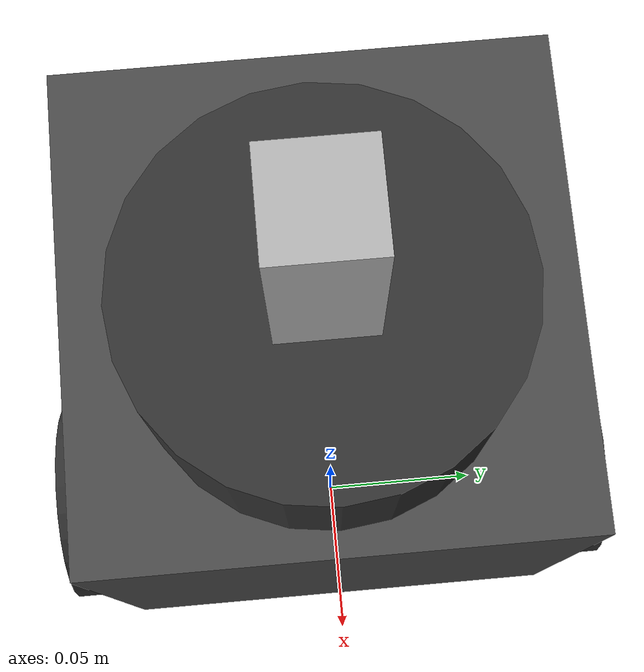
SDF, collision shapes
<?xml version="1.0" ?>
<sdf version="1.5">
  <model name="turtlebot3_burger">
    <pose>0.0 0.0 0.0 0.0 0.0 0.0</pose>

    <link name="base_footprint"/>

    <link name="base_link">

      <inertial>
        <pose>-0.032 0 0.070 0 0 0</pose>
        <inertia>
          <ixx>7.2397393e-01</ixx>
          <ixy>4.686399e-10</ixy>
          <ixz>-1.09525703e-08</ixz>
          <iyy>7.2397393e-01</iyy>
          <iyz>2.8582649e-09</iyz>
          <izz>6.53050163e-01</izz>
        </inertia>
        <mass>8.2573504e-01</mass>
      </inertial>

      <collision name="base_collision">
        <pose>-0.032 0 0.070 0 0 0</pose>
        <geometry>
          <box>
            <size>0.140 0.140 0.140</size>
          </box>
        </geometry>
      </collision>

      <visual name="base_visual">
        <pose>-0.032 0 0 0 0 0</pose>
        <geometry>
          <mesh>
            <uri>model://turtlebot3_common/meshes/bases/burger_base.stl</uri>
            <scale>0.001 0.001 0.001</scale>
          </mesh>
        </geometry>
        <material>
          <ambient>0.3 0.3 0.3 1.0</ambient>
          <diffuse>0.3 0.3 0.3 1.0</diffuse>
        </material>
      </visual>
    </link>

    <link name="imu_link">
      <sensor name="tb3_imu" type="imu">
        <always_on>true</always_on>
        <update_rate>200</update_rate>
        <imu>
          <angular_velocity>
            <x>
              <noise type="gaussian">
                <mean>0.0</mean>
                <stddev>2e-4</stddev>
              </noise>
            </x>
            <y>
              <noise type="gaussian">
                <mean>0.0</mean>
                <stddev>2e-4</stddev>
              </noise>
            </y>
            <z>
              <noise type="gaussian">
                <mean>0.0</mean>
                <stddev>2e-4</stddev>
              </noise>
            </z>
          </angular_velocity>
          <linear_acceleration>
            <x>
              <noise type="gaussian">
                <mean>0.0</mean>
                <stddev>1.7e-2</stddev>
              </noise>
            </x>
            <y>
              <noise type="gaussian">
                <mean>0.0</mean>
                <stddev>1.7e-2</stddev>
              </noise>
            </y>
            <z>
              <noise type="gaussian">
                <mean>0.0</mean>
                <stddev>1.7e-2</stddev>
              </noise>
            </z>
          </linear_acceleration>
        </imu>
        <plugin name="turtlebot3_imu" filename="libgazebo_ros_imu_sensor.so">
          <ros>
            <remapping>~/out:=imu</remapping>
          </ros>
        </plugin>
      </sensor>
    </link>

    <link name="base_scan">
      <inertial>
        <pose>-0.020 0 0.161 0 0 0</pose>
        <inertia>
          <ixx>0.001</ixx>
          <ixy>0.000</ixy>
          <ixz>0.000</ixz>
          <iyy>0.001</iyy>
          <iyz>0.000</iyz>
          <izz>0.001</izz>
        </inertia>
        <mass>0.114</mass>
      </inertial>

      <collision name="lidar_sensor_collision">
        <pose>-0.020 0 0.161 0 0 0</pose>
        <geometry>
          <cylinder>
            <radius>0.0508</radius>
            <length>0.055</length>
          </cylinder>
        </geometry>
      </collision>

      <visual name="lidar_sensor_visual">
        <pose>-0.032 0 0.171 0 0 0</pose>
        <geometry>
          <mesh>
            <uri>model://turtlebot3_common/meshes/sensors/lds.stl</uri>
            <scale>0.001 0.001 0.001</scale>
          </mesh>
        </geometry>
        <material>
          <ambient>0.2 0.2 0.2 1.0</ambient>
          <diffuse>0.2 0.2 0.2 1.0</diffuse>
        </material>
      </visual>

      <sensor name="hls_lfcd_lds" type="ray">
        <always_on>true</always_on>
        <visualize>true</visualize>
        <pose>-0.032 0 0.171 0 0 0</pose>
        <update_rate>5</update_rate>
        <ray>
          <scan>
            <horizontal>
              <samples>360</samples>
              <resolution>1.000000</resolution>
              <min_angle>0.000000</min_angle>
              <max_angle>6.280000</max_angle>
            </horizontal>
          </scan>
          <range>
            <min>0.120000</min>
            <max>3.5</max>
            <resolution>0.015000</resolution>
          </range>
          <noise>
            <type>gaussian</type>
            <mean>0.0</mean>
            <stddev>0.01</stddev>
          </noise>
        </ray>
        <plugin name="turtlebot3_laserscan" filename="libgazebo_ros_ray_sensor.so">
          <ros>
            <remapping>~/out:=scan</remapping>
          </ros>
          <output_type>sensor_msgs/LaserScan</output_type>
          <frame_name>base_scan</frame_name>
        </plugin>
      </sensor>
    </link>

    <link name="wheel_left_link">

      <inertial>
        <pose>0 0.08 0.023 -1.57 0 0</pose>
        <inertia>
          <ixx>1.8158194e-03</ixx>
          <ixy>-9.3392e-12</ixy>
          <ixz>1.04909e-11</ixz>
          <iyy>3.2922126e-03</iyy>
          <iyz>5.75694e-11</iyz>
          <izz>1.8158194e-03</izz>
        </inertia>
        <mass>2.8498940e-02</mass>
      </inertial>

      <collision name="wheel_left_collision">
        <pose>0 0.08 0.023 -1.57 0 0</pose>
        <geometry>
          <cylinder>
            <radius>0.033</radius>
            <length>0.018</length>
          </cylinder>
        </geometry>
        <surface>
          <!-- This friction pamareter don't contain reliable data!! -->
          <friction>
            <ode>
              <mu>100000.0</mu>
              <mu2>100000.0</mu2>
              <fdir1>0 0 0</fdir1>
              <slip1>0.0</slip1>
              <slip2>0.0</slip2>
            </ode>
          </friction>
          <contact>
            <ode>
              <soft_cfm>0</soft_cfm>
              <soft_erp>0.2</soft_erp>
              <kp>1e+5</kp>
              <kd>1</kd>
              <max_vel>0.01</max_vel>
              <min_depth>0.001</min_depth>
            </ode>
          </contact>
        </surface>
      </collision>

      <visual name="wheel_left_visual">
        <pose>0 0.08 0.023 0 0 0</pose>
        <geometry>
          <mesh>
            <uri>model://turtlebot3_common/meshes/wheels/left_tire.stl</uri>
            <scale>0.001 0.001 0.001</scale>
          </mesh>
        </geometry>
        <material>
          <ambient>0.2 0.2 0.2 1.0</ambient>
          <diffuse>0.2 0.2 0.2 1.0</diffuse>
        </material>
      </visual>
    </link>

    <link name="wheel_right_link">

      <inertial>
        <pose>0.0 -0.08 0.023 -1.57 0 0</pose>
        <inertia>
          <ixx>1.8158194e-03</ixx>
          <ixy>-9.3392e-12</ixy>
          <ixz>1.04909e-11</ixz>
          <iyy>3.2922126e-03</iyy>
          <iyz>5.75694e-11</iyz>
          <izz>1.8158194e-03</izz>
        </inertia>
        <mass>2.8498940e-02</mass>
      </inertial>

      <collision name="wheel_right_collision">
        <pose>0.0 -0.08 0.023 -1.57 0 0</pose>
        <geometry>
          <cylinder>
            <radius>0.033</radius>
            <length>0.018</length>
          </cylinder>
        </geometry>
        <surface>
          <!-- This friction pamareter don't contain reliable data!! -->
          <friction>
            <ode>
              <mu>100000.0</mu>
              <mu2>100000.0</mu2>
              <fdir1>0 0 0</fdir1>
              <slip1>0.0</slip1>
              <slip2>0.0</slip2>
            </ode>
          </friction>
          <contact>
            <ode>
              <soft_cfm>0</soft_cfm>
              <soft_erp>0.2</soft_erp>
              <kp>1e+5</kp>
              <kd>1</kd>
              <max_vel>0.01</max_vel>
              <min_depth>0.001</min_depth>
            </ode>
          </contact>
        </surface>
      </collision>

      <visual name="wheel_right_visual">
        <pose>0.0 -0.08 0.023 0 0 0</pose>
        <geometry>
          <mesh>
            <uri>model://turtlebot3_common/meshes/wheels/right_tire.stl</uri>
            <scale>0.001 0.001 0.001</scale>
          </mesh>
        </geometry>
        <material>
          <ambient>0.2 0.2 0.2 1.0</ambient>
          <diffuse>0.2 0.2 0.2 1.0</diffuse>
        </material>
      </visual>
    </link>

    <link name='caster_back_link'>
      <pose>-0.081 0 -0.004 -1.57 0 0</pose>
      <inertial>
        <mass>0.005</mass>
        <inertia>
          <ixx>0.001</ixx>
          <ixy>0.000</ixy>
          <ixz>0.000</ixz>
          <iyy>0.001</iyy>
          <iyz>0.000</iyz>
          <izz>0.001</izz>
        </inertia>
      </inertial>
      <collision name='collision'>
        <geometry>
          <sphere>
            <radius>0.005000</radius>
          </sphere>
        </geometry>
        <surface>
          <contact>
            <ode>
              <soft_cfm>0</soft_cfm>
              <soft_erp>0.2</soft_erp>
              <kp>1e+5</kp>
              <kd>1</kd>
              <max_vel>0.01</max_vel>
              <min_depth>0.001</min_depth>
            </ode>
          </contact>
        </surface>
      </collision>
    </link>

    <joint name="base_joint" type="fixed">
      <parent>base_footprint</parent>
      <child>base_link</child>
      <pose>0.0 0.0 0.010 0 0 0</pose>
    </joint>

    <joint name="wheel_left_joint" type="revolute">
      <parent>base_link</parent>
      <child>wheel_left_link</child>
      <pose>0.0 0.08 0.023 -1.57 0 0</pose>
      <axis>
        <xyz>0 0 1</xyz>
      </axis>
    </joint>

    <joint name="wheel_right_joint" type="revolute">
      <parent>base_link</parent>
      <child>wheel_right_link</child>
      <pose>0.0 -0.08 0.023 -1.57 0 0</pose>
      <axis>
        <xyz>0 0 1</xyz>
      </axis>
    </joint>

    <joint name='caster_back_joint' type='ball'>
      <parent>base_link</parent>
      <child>caster_back_link</child>
    </joint>

    <joint name="imu_joint" type="fixed">
      <parent>base_link</parent>
      <child>imu_link</child>
      <pose>-0.032 0 0.068 0 0 0</pose>
      <axis>
        <xyz>0 0 1</xyz>
      </axis>
    </joint>

    <joint name="lidar_joint" type="fixed">
      <parent>base_link</parent>
      <child>base_scan</child>
      <pose>-0.032 0 0.171 0 0 0</pose>
      <axis>
        <xyz>0 0 1</xyz>
      </axis>
    </joint>

    <plugin name="turtlebot3_diff_drive" filename="libgazebo_ros_diff_drive.so">

      <ros>
      </ros>

      <update_rate>30</update_rate>

      <!-- wheels -->
      <left_joint>wheel_left_joint</left_joint>
      <right_joint>wheel_right_joint</right_joint>

      <!-- kinematics -->
      <wheel_separation>0.160</wheel_separation>
      <wheel_diameter>0.066</wheel_diameter>

      <!-- limits -->
      <max_wheel_torque>20</max_wheel_torque>
      <max_wheel_acceleration>1.0</max_wheel_acceleration>

      <command_topic>cmd_vel</command_topic>

      <!-- output -->
      <publish_odom>true</publish_odom>
      <publish_odom_tf>true</publish_odom_tf>
      <publish_wheel_tf>false</publish_wheel_tf>

      <odometry_topic>odom</odometry_topic>
      <odometry_frame>odom</odometry_frame>
      <robot_base_frame>base_footprint</robot_base_frame>

    </plugin>

    <plugin name="turtlebot3_joint_state" filename="libgazebo_ros_joint_state_publisher.so">
      <ros>
        <remapping>~/out:=joint_states</remapping>
      </ros>
      <update_rate>30</update_rate>
      <joint_name>wheel_left_joint</joint_name>
      <joint_name>wheel_right_joint</joint_name>
    </plugin>

    <!-- Realsense D435 -->

    <link name="realsense_link">
      <pose>-0.02 0 0.201 0 0 0</pose>
      <visual name="realsense_link_visual">
        <pose>0 0 0 1.57 0 1.57</pose>
        <geometry>
          <mesh>
            <uri>package://realsense2_description/meshes/d435.dae</uri>
            <scale>0.5 0.5 0.5</scale>
          </mesh>
        </geometry>
      </visual>
      <collision name="realsense_link_collision">
        <pose>0 0 0 1.57 0 1.57</pose>
        <geometry>
          <box>
            <size>0.02505 0.090 0.025</size>
          </box>
        </geometry>
      </collision>
      <inertial>
        <pose>0 0 0 0 0 0</pose>
        <inertia>
          <ixx>0.001</ixx>
          <ixy>0.000</ixy>
          <ixz>0.000</ixz>
          <iyy>0.001</iyy>
          <iyz>0.000</iyz>
          <izz>0.001</izz>
        </inertia>
        <mass>0.000001</mass>
      </inertial>

      <sensor name="cameradepth" type="depth">
        <camera name="camera">
          <horizontal_fov>1.57</horizontal_fov>
          <image>
            <width>1280</width>
            <height>720</height>
          </image>
          <clip>
            <near>0.1</near>
            <far>100</far>
          </clip>
          <noise>
            <type>gaussian</type>
            <mean>0.0</mean>
            <stddev>0.100</stddev>
          </noise>
        </camera>
        <always_on>1</always_on>
        <update_rate>30</update_rate>
        <visualize>0</visualize>
      </sensor>
      <sensor name="cameracolor" type="camera">
        <camera name="camera">
          <horizontal_fov>1.57</horizontal_fov>
          <image>
            <width>1280</width>
            <height>720</height>
            <format>RGB_INT8</format>
          </image>
          <clip>
            <near>0.1</near>
            <far>100</far>
          </clip>
          <noise>
            <type>gaussian</type>
            <mean>0.0</mean>
            <stddev>0.007</stddev>
          </noise>
        </camera>
        <always_on>1</always_on>
        <update_rate>30</update_rate>
        <visualize>1</visualize>
      </sensor>
      <sensor name="cameraired1" type="camera">
        <camera name="camera">
          <horizontal_fov>1.57</horizontal_fov>
          <image>
            <width>1280</width>
            <height>720</height>
            <format>L_INT8</format>
          </image>
          <clip>
            <near>0.1</near>
            <far>100</far>
          </clip>
          <noise>
            <type>gaussian</type>
            <mean>0.0</mean>
            <stddev>0.05</stddev>
          </noise>
        </camera>
        <always_on>1</always_on>
        <update_rate>1</update_rate>
        <visualize>0</visualize>
      </sensor>
      <sensor name="cameraired2" type="camera">
        <camera name="camera">
          <horizontal_fov>1.57</horizontal_fov>
          <image>
            <width>1280</width>
            <height>720</height>
            <format>L_INT8</format>
          </image>
          <clip>
            <near>0.1</near>
            <far>100</far>
          </clip>
          <noise>
            <type>gaussian</type>
            <mean>0.0</mean>
            <stddev>0.05</stddev>
          </noise>
        </camera>
        <always_on>1</always_on>
        <update_rate>1</update_rate>
        <visualize>0</visualize>
      </sensor>
    </link>

    <joint name="realsense_joint" type="fixed">
      <parent>base_link</parent>
      <child>realsense_link</child>
      <pose>0.4 0 0.4 0 0 0</pose>
    </joint>

    <plugin name="camera" filename="librealsense_gazebo_plugin.so">
      <prefix>camera</prefix>
      <depthUpdateRate>30.0</depthUpdateRate>
      <colorUpdateRate>30.0</colorUpdateRate>
      <infraredUpdateRate>1.0</infraredUpdateRate>
      <depthTopicName>aligned_depth_to_color/image_raw</depthTopicName>
      <depthCameraInfoTopicName>depth/camera_info</depthCameraInfoTopicName>
      <colorTopicName>color/image_raw</colorTopicName>
      <colorCameraInfoTopicName>color/camera_info</colorCameraInfoTopicName>
      <infrared1TopicName>infra1/image_raw</infrared1TopicName>
      <infrared1CameraInfoTopicName>infra1/camera_info</infrared1CameraInfoTopicName>
      <infrared2TopicName>infra2/image_raw</infrared2TopicName>
      <infrared2CameraInfoTopicName>infra2/camera_info</infrared2CameraInfoTopicName>
      <colorOpticalframeName>camera_color_optical_frame</colorOpticalframeName>
      <depthOpticalframeName>camera_depth_optical_frame</depthOpticalframeName>
      <infrared1OpticalframeName>camera_left_ir_optical_frame</infrared1OpticalframeName>
      <infrared2OpticalframeName>camera_right_ir_optical_frame</infrared2OpticalframeName>
      <rangeMinDepth>0.3</rangeMinDepth>
      <rangeMaxDepth>3.0</rangeMaxDepth>
      <pointCloud>true</pointCloud>
      <pointCloudTopicName>depth/color/points</pointCloudTopicName>
      <pointCloudCutoff>0.3</pointCloudCutoff>
    </plugin>

  </model>
</sdf>
